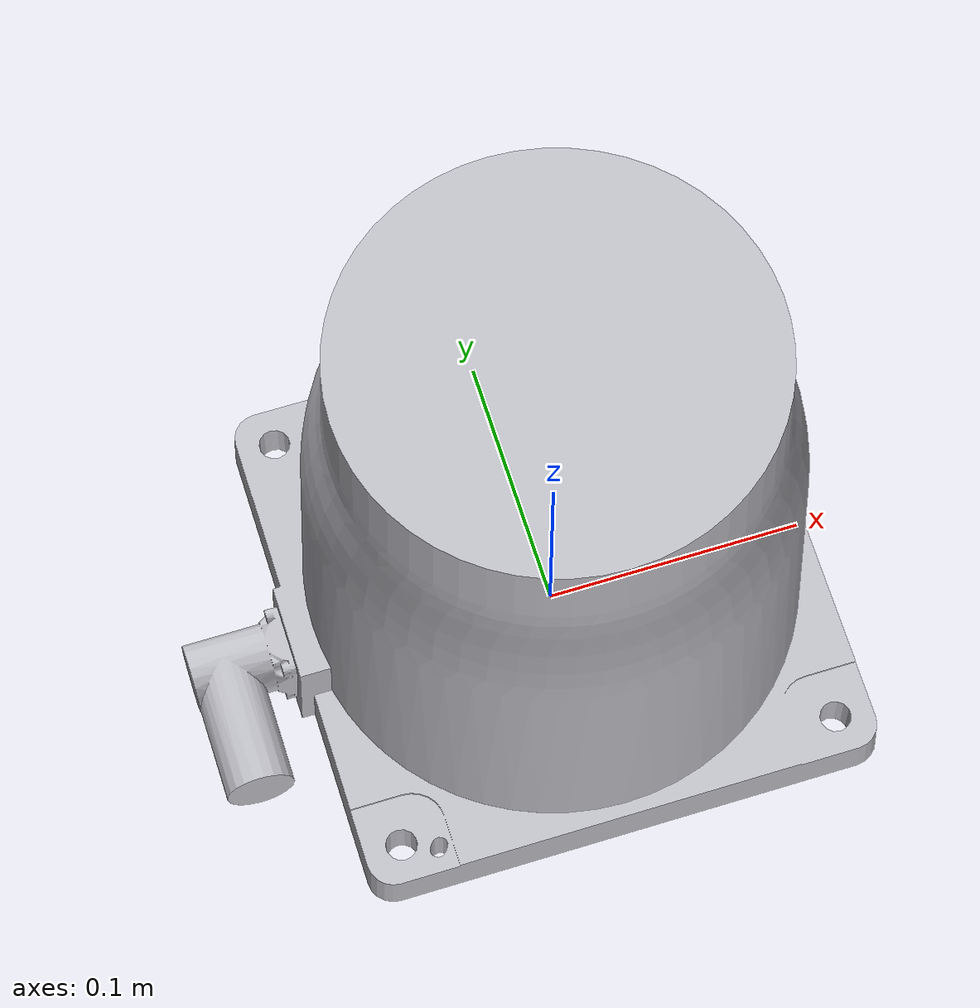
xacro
<?xml version="1.0" ?>
<robot name="CRB15000_10kg-152" xmlns:xacro="http://www.ros.org/wiki/xacro">

<xacro:include filename="$(find CRB15000_10kg-152_description)/urdf/materials.xacro" />
<xacro:include filename="$(find CRB15000_10kg-152_description)/urdf/CRB15000_10kg-152.trans" />
<xacro:include filename="$(find CRB15000_10kg-152_description)/urdf/CRB15000_10kg-152.gazebo" />
<link name="base_link">
  <inertial>
    <origin xyz="-0.0011656606666003504 -0.00011127786600189595 0.0985691713362607" rpy="0 0 0"/>
    <mass value="43.321834194728716"/>
    <inertia ixx="0.254824" iyy="0.26074" izz="0.191484" ixy="-0.000567" iyz="-0.000372" ixz="-0.003894"/>
  </inertial>
  <visual>
    <origin xyz="0 0 0" rpy="0 0 0"/>
    <geometry>
      <mesh filename="package://CRB15000_10kg-152_description/meshes/base_link.stl" scale="0.001 0.001 0.001"/>
    </geometry>
    <material name="silver"/>
  </visual>
  <collision>
    <origin xyz="0 0 0" rpy="0 0 0"/>
    <geometry>
      <mesh filename="package://CRB15000_10kg-152_description/meshes/base_link.stl" scale="0.001 0.001 0.001"/>
    </geometry>
  </collision>
</link>

</robot>

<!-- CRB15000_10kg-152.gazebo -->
<robot name="CRB15000_10kg-152" xmlns:xacro="http://www.ros.org/wiki/xacro" >

<xacro:property name="body_color" value="Gazebo/Silver" />

<gazebo>
  <plugin name="control" filename="libgazebo_ros_control.so"/>
</gazebo>
<gazebo reference="base_link">
  <material>${body_color}</material>
  <mu1>0.2</mu1>
  <mu2>0.2</mu2>
  <selfCollide>true</selfCollide>
  <gravity>true</gravity>
</gazebo>

</robot>
